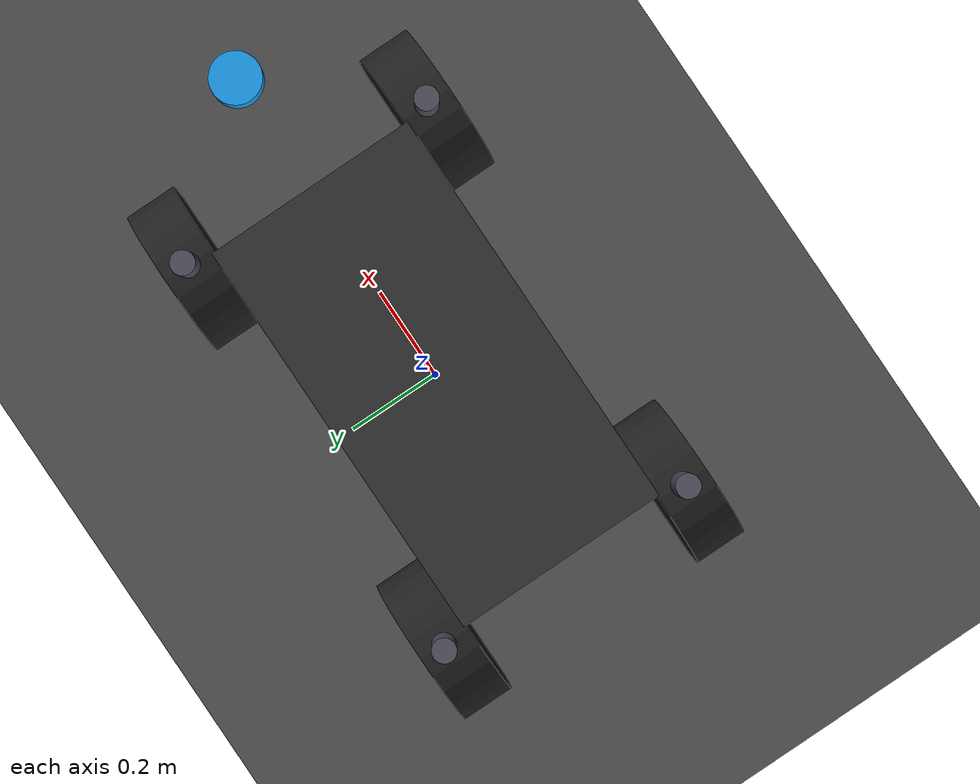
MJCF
<mujoco model="ranger_mini">

  <compiler angle="radian" meshdir="meshes/"/>

  <!-- Physics: small timestep for wheel-ground stability -->
  <option timestep="0.004" integrator="RK4" gravity="0 0 -9.81"/>

  <default>
    <joint damping="1.0" armature="0.01"/>
    <!-- Good tire-like friction -->
    <geom friction="1.2 0.01 0.001" condim="4" solimp="0.9 0.95 0.001" solref="0.02 1"/>
  </default>

  <asset>
    <!-- Floor -->
    <texture name="floor_tex" type="2d" builtin="checker"
             rgb1="0.25 0.25 0.25" rgb2="0.35 0.35 0.35" width="512" height="512"/>
    <material name="floor_mat"    texture="floor_tex" texrepeat="10 10"/>

    <!-- Robot materials -->
    <material name="chassis_mat"  rgba="0.18 0.18 0.18 1"/>
    <material name="wheel_mat"    rgba="0.12 0.12 0.12 1"/>
    <material name="steering_mat" rgba="0.30 0.30 0.35 1"/>
    <material name="cam_mat"      rgba="0.9  0.2  0.1  1"/>
    <material name="lidar_mat"    rgba="0.1  0.6  0.9  1"/>
  </asset>

  <worldbody>

    <!-- Ground plane -->
    <geom name="floor" type="plane" size="30 30 0.1"
          material="floor_mat" friction="1.2 0.01 0.001"/>

    <!-- Lighting -->
    <light name="sun"   pos="0 0 8"  dir="0 0 -1"
           diffuse="0.85 0.85 0.85" specular="0.2 0.2 0.2" castshadow="true"/>
    <light name="fill"  pos="-3 3 4" dir="0.4 -0.5 -0.8"
           diffuse="0.3 0.3 0.3"   specular="0.0 0.0 0.0" castshadow="false"/>

    <!-- ═══════════════════════════ RANGER MINI ═══════════════════════════ -->
    <body name="base_link" pos="0 0 0.34">

      <!-- 6-DOF free joint so the robot moves in the world -->
      <freejoint name="root"/>

      <!-- Chassis inertia from URDF base_link inertial -->
      <inertial pos="-0.0169 0.0068 0.0578"
                mass="88.757"
                fullinertia="1.7123 4.9003 6.3943 0.0111 -0.0194 -0.0001"/>

      <!-- Chassis collision: approximate box (L×W×H = 0.9×0.56×0.25 half-sizes) -->
      <geom name="chassis_box" type="box"
            size="0.42 0.22 0.12"
            pos="0 0 0.02"
            material="chassis_mat"/>

      <!-- IMU site (at base centre) -->
      <site name="imu_site" pos="0 0 0" size="0.01"/>

      <!-- ── Front RGB Camera ───────────────────────────────────────────── -->
      <!--
        Mounted at front of chassis, elevated 0.15 m, looking forward.
        MuJoCo cameras look in -Z by default, so euler="0 90° 0" makes it
        look in +X (robot forward).
      -->
      <body name="camera_link" pos="0.65 0 0.20">
        <geom name="cam_marker" type="box" size="0.025 0.035 0.020"
              material="cam_mat" contype="0" conaffinity="0"/>
        <camera name="front_cam" fovy="80" xyaxes="0 -1 0 0 0 1"/>
      </body>

      <!-- ── LiDAR mount (simulated as depth camera) ───────────────────── -->
      <body name="lidar_link" pos="0.65 0 0.25">
        <geom name="lidar_marker" type="cylinder" size="0.05 0.03"
              material="lidar_mat" contype="0" conaffinity="0"/>
        <!-- Depth-camera approximation of a 2D LiDAR sweep -->
        <camera name="lidar_cam" fovy="1.0" xyaxes="0 -1 0 0 0 1"/>
      </body>

      <!-- ═══════════ FRONT-RIGHT CORNER ═══════════════════════════════════
           Steering mount: x= 0.445  y=-0.280  z= 0.0335  (from URDF)
           Wheel drop from steering mount: z = -0.2918
      -->
      <body name="fr_steering_link" pos="0.445 -0.280 0.0335">
        <joint name="fr_steering_joint" type="hinge" axis="0 0 -1"
               range="-0.6109 0.6109"
               damping="5.0" armature="0.05"/>
        <inertial pos="0.0001118 -0.0073218 -0.085228"
                  mass="2.0957"
                  fullinertia="0.0077827 0.0012664 0.0079221 1.29e-8 7.56e-7 -3.99e-6"/>
        <!-- Steering knuckle visual -->
        <geom name="fr_knuckle" type="cylinder" size="0.025 0.06"
              pos="0 0 -0.06" material="steering_mat"
              contype="0" conaffinity="0"/>

        <!-- Wheel -->
        <body name="fr_wheel_link" pos="0 0.001 -0.2918">
          <!-- URDF rpy="1.5708 0 0" → wheel spins about Y in MJCF (was local Z after rotation) -->
          <joint name="fr_wheel_joint" type="hinge" axis="0 1 0"
                 limited="false" damping="0.5"/>
          <inertial pos="-0.00095 0 0.0021"
                    mass="11.468"
                    fullinertia="0.05332 0.08008 0.11423 3.09e-9 8.27e-7 2.15e-7"/>
          <geom name="fr_wheel_col" type="cylinder" size="0.160 0.055"
                euler="1.5708 0 0" material="wheel_mat"/>
        </body>
      </body>

      <!-- ═══════════ FRONT-LEFT CORNER ════════════════════════════════════
           Steering mount: x= 0.445  y= 0.280  z= 0.0335
           Wheel drop: z = -0.29345
      -->
      <body name="fl_steering_wheel_link" pos="0.445 0.280 0.0335">
        <joint name="fl_steering_joint" type="hinge" axis="0 0 -1"
               range="-0.6109 0.6109"
               damping="5.0" armature="0.05"/>
        <inertial pos="0.00010411 0.0077919 -0.086394"
                  mass="2.1046"
                  fullinertia="0.0077836 0.0012676 0.007923 1.57e-8 1.35e-6 3.33e-6"/>
        <geom name="fl_knuckle" type="cylinder" size="0.025 0.06"
              pos="0 0 -0.06" material="steering_mat"
              contype="0" conaffinity="0"/>

        <body name="fl_wheel_link" pos="0 -0.001 -0.29345">
          <joint name="fl_wheel_joint" type="hinge" axis="0 1 0"
                 limited="false" damping="0.5"/>
          <inertial pos="0.000311 0 -0.002099"
                    mass="11.4679"
                    fullinertia="0.05332 0.08008 0.11423 3.01e-9 8.27e-7 2.15e-7"/>
          <geom name="fl_wheel_col" type="cylinder" size="0.160 0.055"
                euler="1.5708 0 0" material="wheel_mat"/>
        </body>
      </body>

      <!-- ═══════════ REAR-LEFT CORNER ═════════════════════════════════════
           Steering mount: x=-0.445  y= 0.280  z= 0.0335
      -->
      <body name="rl_steering_wheel_link" pos="-0.445 0.280 0.0335">
        <joint name="rl_steering_joint" type="hinge" axis="0 0 -1"
               range="-0.6109 0.6109"
               damping="5.0" armature="0.05"/>
        <inertial pos="0.000105 0.007473 -0.085165"
                  mass="2.09214"
                  fullinertia="0.007783 0.001266 0.007922 1.57e-8 1.35e-6 3.33e-6"/>
        <geom name="rl_knuckle" type="cylinder" size="0.025 0.06"
              pos="0 0 -0.06" material="steering_mat"
              contype="0" conaffinity="0"/>

        <body name="rl_wheel_link" pos="0 -0.001 -0.29345">
          <joint name="rl_wheel_joint" type="hinge" axis="0 1 0"
                 limited="false" damping="0.5"/>
          <inertial pos="0.000311 0 -0.002099"
                    mass="11.4679"
                    fullinertia="0.05332 0.08008 0.11423 3.01e-9 8.27e-7 2.15e-7"/>
          <geom name="rl_wheel_col" type="cylinder" size="0.160 0.055"
                euler="1.5708 0 0" material="wheel_mat"/>
        </body>
      </body>

      <!-- ═══════════ REAR-RIGHT CORNER ════════════════════════════════════
           Steering mount: x=-0.445  y=-0.280  z= 0.0335
      -->
      <body name="rr_steering_wheel_link" pos="-0.445 -0.280 0.0335">
        <joint name="rr_steering_joint" type="hinge" axis="0 0 -1"
               range="-0.6109 0.6109"
               damping="5.0" armature="0.05"/>
        <inertial pos="0.000105 0.007473 -0.085165"
                  mass="2.09214"
                  fullinertia="0.007783 0.001266 0.007922 1.57e-8 1.35e-6 3.33e-6"/>
        <geom name="rr_knuckle" type="cylinder" size="0.025 0.06"
              pos="0 0 -0.06" material="steering_mat"
              contype="0" conaffinity="0"/>

        <body name="rr_wheel_link" pos="0 0.001 -0.2918">
          <joint name="rr_wheel_joint" type="hinge" axis="0 1 0"
                 limited="false" damping="0.5"/>
          <inertial pos="-0.000951 0 0.002095"
                    mass="11.4679"
                    fullinertia="0.05332 0.08008 0.11423 3.09e-9 8.27e-7 2.15e-7"/>
          <geom name="rr_wheel_col" type="cylinder" size="0.160 0.055"
                euler="1.5708 0 0" material="wheel_mat"/>
        </body>
      </body>

    </body> <!-- /base_link -->

  </worldbody>

  <actuator>
    <!-- Steering position actuators -->
    <position name="act_fl_steer" joint="fl_steering_joint" kp="100"
              ctrlrange="-0.6109 0.6109"/>
    <position name="act_fr_steer" joint="fr_steering_joint" kp="100"
              ctrlrange="-0.6109 0.6109"/>
    <position name="act_rl_steer" joint="rl_steering_joint" kp="100"
              ctrlrange="-0.6109 0.6109"/>
    <position name="act_rr_steer" joint="rr_steering_joint" kp="100"
              ctrlrange="-0.6109 0.6109"/>

    <!-- Wheel velocity actuators -->
    <velocity name="act_fl_drive" joint="fl_wheel_joint" kv="60"/>
    <velocity name="act_fr_drive" joint="fr_wheel_joint" kv="60"/>
    <velocity name="act_rl_drive" joint="rl_wheel_joint" kv="60"/>
    <velocity name="act_rr_drive" joint="rr_wheel_joint" kv="60"/>
  </actuator>

  <sensor>
    <!-- IMU: accelerometer (m/s²) -->
    <accelerometer name="imu_accel" site="imu_site"/>
    <!-- IMU: gyroscope (rad/s) -->
    <gyro name="imu_gyro" site="imu_site"/>

    <!-- Wheel velocity feedback (rad/s) -->
    <jointvel name="fl_wheel_vel" joint="fl_wheel_joint"/>
    <jointvel name="fr_wheel_vel" joint="fr_wheel_joint"/>
    <jointvel name="rl_wheel_vel" joint="rl_wheel_joint"/>
    <jointvel name="rr_wheel_vel" joint="rr_wheel_joint"/>

    <!-- Steering angle feedback (rad) -->
    <jointpos name="fl_steer_pos" joint="fl_steering_joint"/>
    <jointpos name="fr_steer_pos" joint="fr_steering_joint"/>
    <jointpos name="rl_steer_pos" joint="rl_steering_joint"/>
    <jointpos name="rr_steer_pos" joint="rr_steering_joint"/>
  </sensor>

</mujoco>
